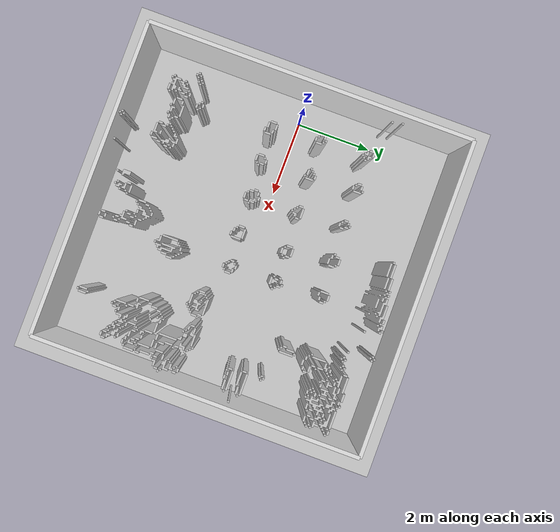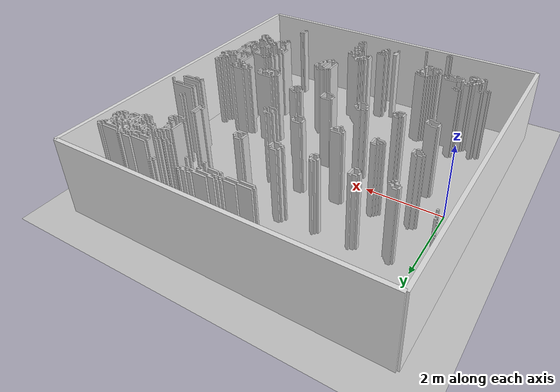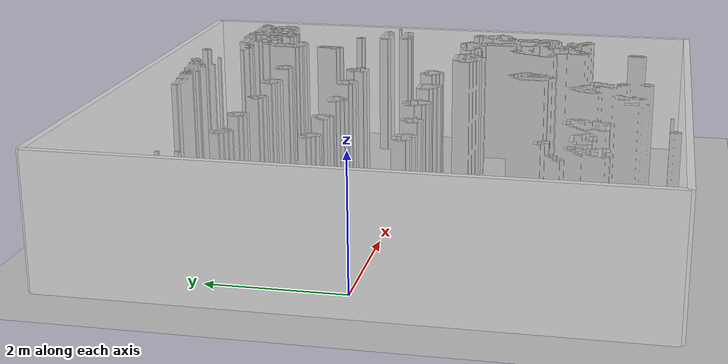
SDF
<?xml version="1.0" ?>
<sdf version="1.8">
  <world name="indoor_lab_world_walled">

    <physics name='1ms' type='ignored'>
        <max_step_size>0.003</max_step_size>
        <real_time_factor>1</real_time_factor>
        <real_time_update_rate>1000</real_time_update_rate>
    </physics>
    <plugin name='ignition::gazebo::systems::Physics' filename='ignition-gazebo-physics-system' />
    <plugin name='ignition::gazebo::systems::UserCommands' filename='ignition-gazebo-user-commands-system' />
    <plugin name='ignition::gazebo::systems::SceneBroadcaster' filename='ignition-gazebo-scene-broadcaster-system' />
    <plugin name='ignition::gazebo::systems::Contact' filename='ignition-gazebo-contact-system' />
    <light name='sun' type='directional'>
        <cast_shadows>1</cast_shadows>
        <pose>0 0 10 0 -0 0</pose>
        <diffuse>0.8 0.8 0.8 1</diffuse>
        <specular>0.2 0.2 0.2 1</specular>
        <attenuation>
            <range>1000</range>
            <constant>0.90000000000000002</constant>
            <linear>0.01</linear>
            <quadratic>0.001</quadratic>
        </attenuation>
        <direction>-0.5 0.1 -0.9</direction>
        <spot>
            <inner_angle>0</inner_angle>
            <outer_angle>0</outer_angle>
            <falloff>0</falloff>
        </spot>
    </light>
    <gravity>0 0 -9.8</gravity>
    <magnetic_field>6e-06 2.3e-05 -4.2e-05</magnetic_field>
    <atmosphere type='adiabatic' />
    <scene>
        <ambient>0.4 0.4 0.4 1</ambient>
        <background>0.7 0.7 0.7 1</background>
        <shadows>1</shadows>
    </scene>
    <model name='ground_plane'>
        <static>1</static>
        <link name='link'>
            <collision name='collision'>
                <geometry>
                    <plane>
                        <normal>0 0 1</normal>
                        <size>100 100</size>
                    </plane>
                </geometry>
                <surface>
                    <friction>
                        <ode />
                    </friction>
                    <bounce />
                    <contact />
                </surface>
            </collision>
            <visual name='visual'>
                <geometry>
                    <plane>
                        <normal>0 0 1</normal>
                        <size>100 100</size>
                    </plane>
                </geometry>
                <material>
                    <ambient>0.8 0.8 0.8 1</ambient>
                    <diffuse>0.8 0.8 0.8 1</diffuse>
                    <specular>0.8 0.8 0.8 1</specular>
                </material>
                <plugin name='__default__' filename='__default__' />
            </visual>
        </link>
        <plugin name='__default__' filename='__default__' />
        <pose>0 0 0 0 -0 0</pose>
    </model>

    <!-- Include the converted map model -->
    <include>
      <uri>model://map</uri>
      <pose>0 0 0 0 0 0</pose>
    </include>

    <!-- Boundary Walls -->
    <!-- Map dimensions: 161x167 pixels at 0.05m/pixel = 8.05m x 8.35m -->
    <!-- Map origin: [-0.651, -4.25, 0] -->
    <!-- Map bounds: X: -0.651 to 7.399, Y: -4.25 to 4.1 -->

    <!-- Wall thickness -->
    <!-- Wall height -->

    <!-- North Wall (top, positive Y) -->
    <model name="north_wall">
      <static>true</static>
      <pose>3.374 4.15 1.0 0 0 0</pose> <!-- Center at Y=4.1 + wall_thickness/2 -->
      <link name="link">
        <collision name="collision">
          <geometry>
            <box>
              <size>8.15 0.1 2.0</size> <!-- length x thickness x height -->
            </box>
          </geometry>
        </collision>
        <visual name="visual">
          <geometry>
            <box>
              <size>8.15 0.1 2.0</size>
            </box>
          </geometry>
          <material>
            <ambient>0.7 0.7 0.7 1</ambient>
            <diffuse>0.9 0.9 0.9 1</diffuse>
            <specular>0.1 0.1 0.1 1</specular>
          </material>
        </visual>
      </link>
    </model>

    <!-- South Wall (bottom, negative Y) -->
    <model name="south_wall">
      <static>true</static>
      <pose>3.374 -4.3 1.0 0 0 0</pose> <!-- Center at Y=-4.25 - wall_thickness/2 -->
      <link name="link">
        <collision name="collision">
          <geometry>
            <box>
              <size>8.15 0.1 2.0</size>
            </box>
          </geometry>
        </collision>
        <visual name="visual">
          <geometry>
            <box>
              <size>8.15 0.1 2.0</size>
            </box>
          </geometry>
          <material>
            <ambient>0.7 0.7 0.7 1</ambient>
            <diffuse>0.9 0.9 0.9 1</diffuse>
            <specular>0.1 0.1 0.1 1</specular>
          </material>
        </visual>
      </link>
    </model>

    <!-- East Wall (right, positive X) -->
    <model name="east_wall">
      <static>true</static>
      <pose>7.449 -0.075 1.0 0 0 0</pose> <!-- Center at X=7.399 + wall_thickness/2 -->
      <link name="link">
        <collision name="collision">
          <geometry>
            <box>
              <size>0.1 8.45 2.0</size> <!-- thickness x length x height -->
            </box>
          </geometry>
        </collision>
        <visual name="visual">
          <geometry>
            <box>
              <size>0.1 8.45 2.0</size>
            </box>
          </geometry>
          <material>
            <ambient>0.7 0.7 0.7 1</ambient>
            <diffuse>0.9 0.9 0.9 1</diffuse>
            <specular>0.1 0.1 0.1 1</specular>
          </material>
        </visual>
      </link>
    </model>

    <!-- West Wall (left, negative X) -->
    <model name="west_wall">
      <static>true</static>
      <pose>-0.701 -0.075 1.0 0 0 0</pose> <!-- Center at X=-0.651 - wall_thickness/2 -->
      <link name="link">
        <collision name="collision">
          <geometry>
            <box>
              <size>0.1 8.45 2.0</size>
            </box>
          </geometry>
        </collision>
        <visual name="visual">
          <geometry>
            <box>
              <size>0.1 8.45 2.0</size>
            </box>
          </geometry>
          <material>
            <ambient>0.7 0.7 0.7 1</ambient>
            <diffuse>0.9 0.9 0.9 1</diffuse>
            <specular>0.1 0.1 0.1 1</specular>
          </material>
        </visual>
      </link>
    </model>

  </world>
</sdf>

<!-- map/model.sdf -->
<sdf version="1.6">
  <model name="map">
    <static>true</static>
    <link name="link">
      <collision name="collision">
        <geometry>
          <mesh>
            <uri>model://map/meshes/indoor_abc_lab3.stl</uri>
          </mesh>
        </geometry>
      </collision>
      <visual name="visual">
        <geometry>
          <mesh>
            <uri>model://map/meshes/indoor_abc_lab3.stl</uri>
          </mesh>
        </geometry>
        <material>
          <ambient>0.5 0.5 0.5 1</ambient>
          <diffuse>0.8 0.8 0.8 1</diffuse>
          <specular>0.1 0.1 0.1 1</specular>
        </material>
      </visual>
    </link>
  </model>
</sdf>
